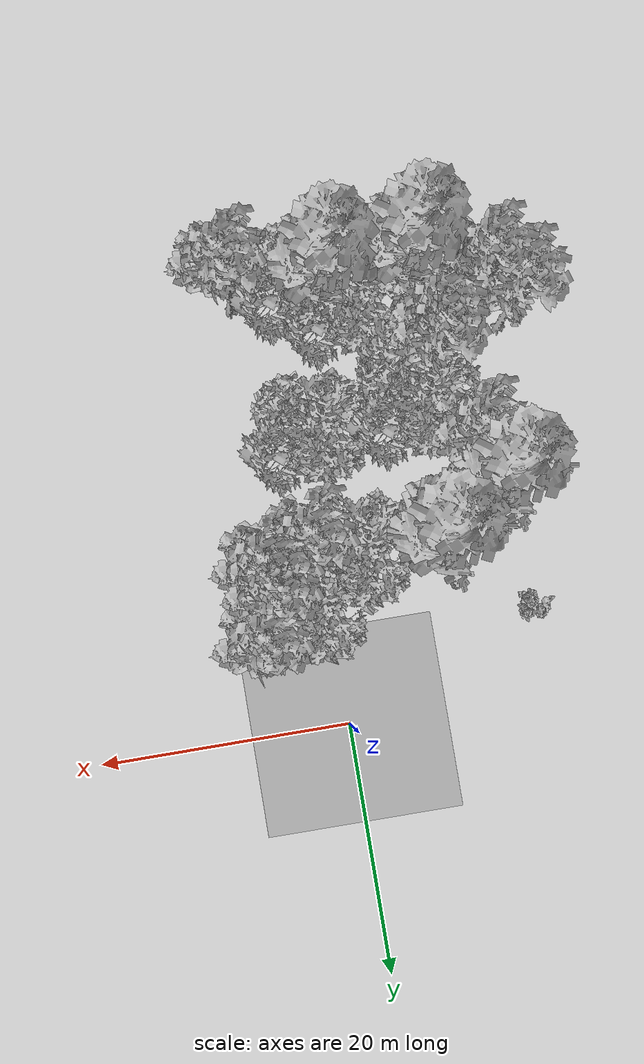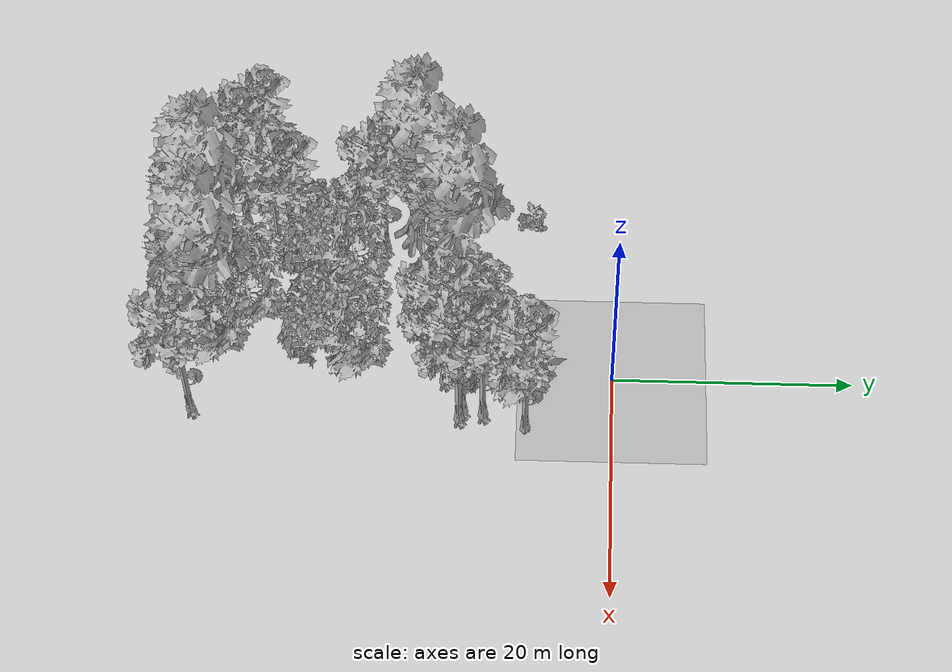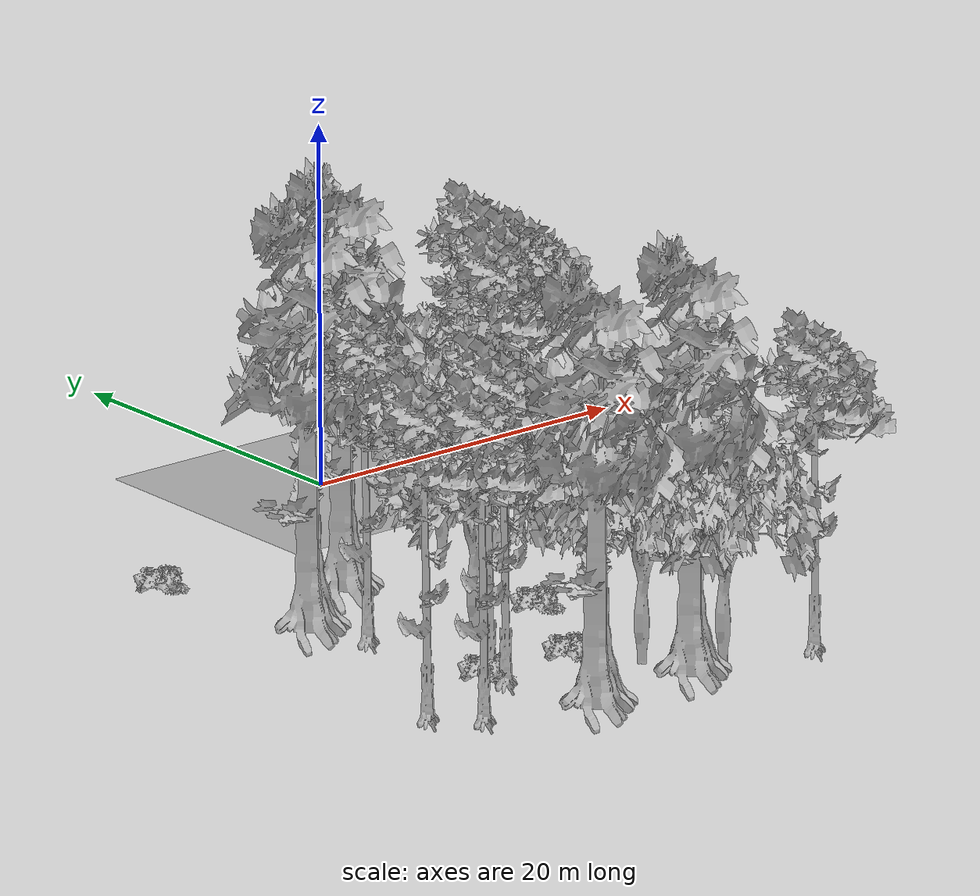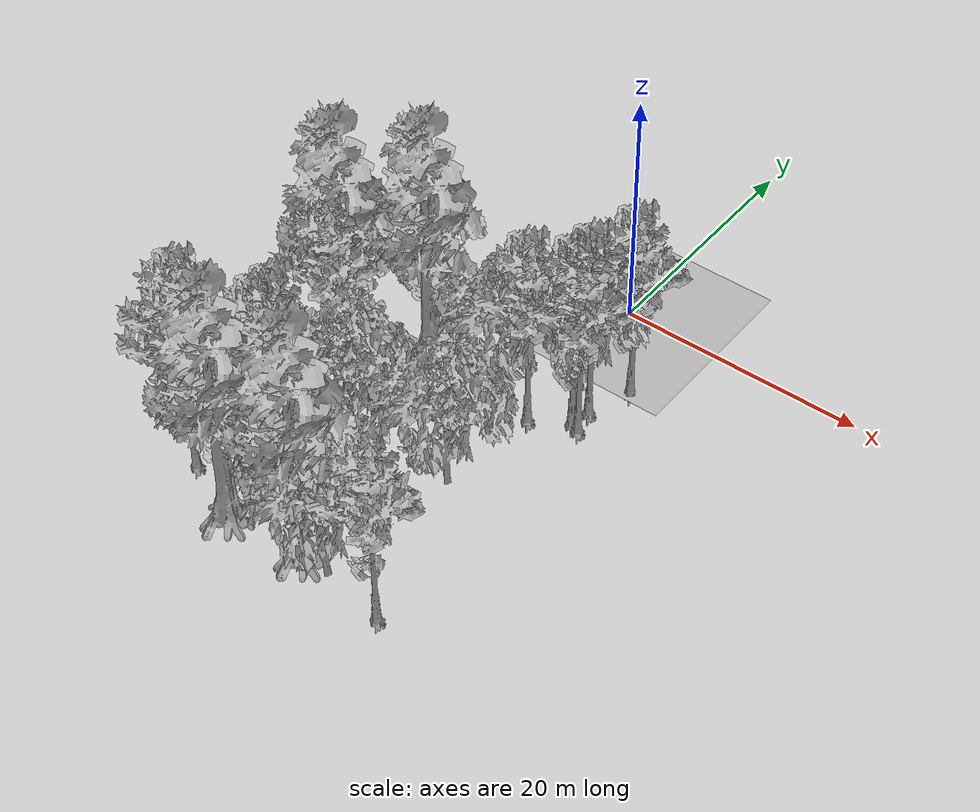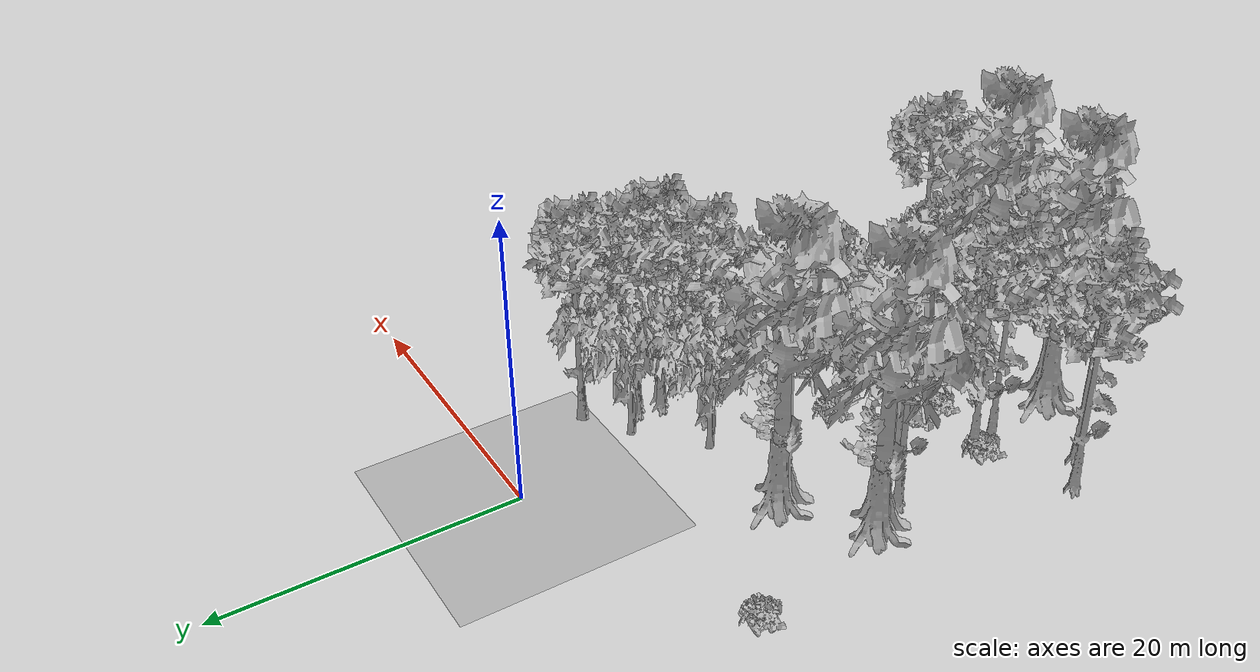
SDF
<sdf version="1.7">
 <world name="default">
  <model name="ground_plane">
   <static>1</static>
   <link name="link">
    <collision name="collision">
     <geometry><plane><normal>0 0 1</normal><size>70 70</size></plane></geometry>
     <surface><contact><ode><min_depth>0.01</min_depth><max_vel>0</max_vel></ode></contact></surface>
    </collision>
    <visual name="grass">
     <cast_shadows>0</cast_shadows>
     <geometry>
      <mesh>
       <scale>0.29000000000000004 0.29000000000000004 0.1</scale>
       <uri>file://grass_plane/meshes/grass_plane.dae</uri>
      </mesh>
     </geometry>
    </visual>
   </link>
  </model>
  <model name="Tree 4">
   <static>1</static>
   <pose>-0.35684061162447733 -22.16048140596576 0 1.57079 -0 0</pose>
   <link name="link">
    <collision name="collision">
     <geometry><mesh><scale>5 5 5</scale><uri>model://tree_2/meshes/tree_2.obj</uri></mesh></geometry>
    </collision>
    <visual name="visual">
     <geometry><mesh><scale>5 5 5</scale><uri>model://tree_2/meshes/tree_2.obj</uri></mesh></geometry>
    </visual>
   </link>
  </model>
  <model name="Tree 8">
   <static>1</static>
   <pose>-1.5016746747762966 -33.702371741759194 0 1.57079 -0 0</pose>
   <link name="link">
    <collision name="collision">
     <geometry><mesh><scale>5 5 5</scale><uri>model://tree_2/meshes/tree_2.obj</uri></mesh></geometry>
    </collision>
    <visual name="visual">
     <geometry><mesh><scale>5 5 5</scale><uri>model://tree_2/meshes/tree_2.obj</uri></mesh></geometry>
    </visual>
   </link>
  </model>
  <model name="Tree 15">
   <static>1</static>
   <pose>0.6577428110080774 -13.890793284871908 0 1.57079 -0 0</pose>
   <link name="link">
    <collision name="collision">
     <geometry><mesh><scale>5 5 5</scale><uri>model://tree_9/meshes/tree_9.obj</uri></mesh></geometry>
    </collision>
    <visual name="visual">
     <geometry><mesh><scale>5 5 5</scale><uri>model://tree_9/meshes/tree_9.obj</uri></mesh></geometry>
    </visual>
   </link>
  </model>
  <model name="Tree 30">
   <static>1</static>
   <pose>-8.545860499565524 -22.826163726782575 0 1.57079 -0 0</pose>
   <link name="link">
    <collision name="collision">
     <geometry><mesh><scale>5 5 5</scale><uri>model://tree_2/meshes/tree_2.obj</uri></mesh></geometry>
    </collision>
    <visual name="visual">
     <geometry><mesh><scale>5 5 5</scale><uri>model://tree_2/meshes/tree_2.obj</uri></mesh></geometry>
    </visual>
   </link>
  </model>
  <model name="Tree 31">
   <static>1</static>
   <pose>-14.174709668413985 -16.681003873834264 0 1.57079 -0 0</pose>
   <link name="link">
    <collision name="collision">
     <geometry><mesh><scale>5 5 5</scale><uri>model://tree_4/meshes/tree_4.obj</uri></mesh></geometry>
    </collision>
    <visual name="visual">
     <geometry><mesh><scale>5 5 5</scale><uri>model://tree_4/meshes/tree_4.obj</uri></mesh></geometry>
    </visual>
   </link>
  </model>
  <model name="Tree 54">
   <static>1</static>
   <pose>-10.092448693488798 -34.098062078575275 0 1.57079 -0 0</pose>
   <link name="link">
    <collision name="collision">
     <geometry><mesh><scale>5 5 5</scale><uri>model://tree_4/meshes/tree_4.obj</uri></mesh></geometry>
    </collision>
    <visual name="visual">
     <geometry><mesh><scale>5 5 5</scale><uri>model://tree_4/meshes/tree_4.obj</uri></mesh></geometry>
    </visual>
   </link>
  </model>
  <model name="Tree 65">
   <static>1</static>
   <pose>1.7243987079853653 -9.02996922799733 0 1.57079 -0 0</pose>
   <link name="link">
    <collision name="collision">
     <geometry><mesh><scale>5 5 5</scale><uri>model://tree_2/meshes/tree_2.obj</uri></mesh></geometry>
    </collision>
    <visual name="visual">
     <geometry><mesh><scale>5 5 5</scale><uri>model://tree_2/meshes/tree_2.obj</uri></mesh></geometry>
    </visual>
   </link>
  </model>
  <model name="Tree 71">
   <static>1</static>
   <pose>3.866322315430331 -34.68275864928653 0 1.57079 -0 0</pose>
   <link name="link">
    <collision name="collision">
     <geometry><mesh><scale>5 5 5</scale><uri>model://tree_9/meshes/tree_9.obj</uri></mesh></geometry>
    </collision>
    <visual name="visual">
     <geometry><mesh><scale>5 5 5</scale><uri>model://tree_9/meshes/tree_9.obj</uri></mesh></geometry>
    </visual>
   </link>
  </model>
  <model name="Tree 82">
   <static>1</static>
   <pose>4.197756827306748 -12.54007677003478 0 1.57079 -0 0</pose>
   <link name="link">
    <collision name="collision">
     <geometry><mesh><scale>5 5 5</scale><uri>model://tree_9/meshes/tree_9.obj</uri></mesh></geometry>
    </collision>
    <visual name="visual">
     <geometry><mesh><scale>5 5 5</scale><uri>model://tree_9/meshes/tree_9.obj</uri></mesh></geometry>
    </visual>
   </link>
  </model>
  <model name="Tree 98">
   <static>1</static>
   <pose>-12.644980128853685 -19.500797792096602 0 1.57079 -0 0</pose>
   <link name="link">
    <collision name="collision">
     <geometry><mesh><scale>5 5 5</scale><uri>model://tree_9/meshes/tree_9.obj</uri></mesh></geometry>
    </collision>
    <visual name="visual">
     <geometry><mesh><scale>5 5 5</scale><uri>model://tree_9/meshes/tree_9.obj</uri></mesh></geometry>
    </visual>
   </link>
  </model>
  <model name="Tree 99">
   <static>1</static>
   <pose>-10.96344793002184 -27.04201201688182 0 1.57079 -0 0</pose>
   <link name="link">
    <collision name="collision">
     <geometry><mesh><scale>5 5 5</scale><uri>model://tree_9/meshes/tree_9.obj</uri></mesh></geometry>
    </collision>
    <visual name="visual">
     <geometry><mesh><scale>5 5 5</scale><uri>model://tree_9/meshes/tree_9.obj</uri></mesh></geometry>
    </visual>
   </link>
  </model>
  <model name="Tree 132">
   <static>1</static>
   <pose>3.7530776806332398 -10.573624312487144 0 1.57079 -0 0</pose>
   <link name="link">
    <collision name="collision">
     <geometry><mesh><scale>5 5 5</scale><uri>model://tree_9/meshes/tree_9.obj</uri></mesh></geometry>
    </collision>
    <visual name="visual">
     <geometry><mesh><scale>5 5 5</scale><uri>model://tree_9/meshes/tree_9.obj</uri></mesh></geometry>
    </visual>
   </link>
  </model>
  <model name="Tree 159">
   <static>1</static>
   <pose>3.4425090654101282 -12.247262166019755 0 1.57079 -0 0</pose>
   <link name="link">
    <collision name="collision">
     <geometry><mesh><scale>5 5 5</scale><uri>model://tree_9/meshes/tree_9.obj</uri></mesh></geometry>
    </collision>
    <visual name="visual">
     <geometry><mesh><scale>5 5 5</scale><uri>model://tree_9/meshes/tree_9.obj</uri></mesh></geometry>
    </visual>
   </link>
  </model>
  <model name="Tree 177">
   <static>1</static>
   <pose>-9.093886908762698 -13.090200899521825 0 1.57079 -0 0</pose>
   <link name="link">
    <collision name="collision">
     <geometry><mesh><scale>5 5 5</scale><uri>model://tree_4/meshes/tree_4.obj</uri></mesh></geometry>
    </collision>
    <visual name="visual">
     <geometry><mesh><scale>5 5 5</scale><uri>model://tree_4/meshes/tree_4.obj</uri></mesh></geometry>
    </visual>
   </link>
  </model>
  <model name="Tree 180">
   <static>1</static>
   <pose>5.011517522125189 -7.086129346748351 0 1.57079 -0 0</pose>
   <link name="link">
    <collision name="collision">
     <geometry><mesh><scale>5 5 5</scale><uri>model://tree_9/meshes/tree_9.obj</uri></mesh></geometry>
    </collision>
    <visual name="visual">
     <geometry><mesh><scale>5 5 5</scale><uri>model://tree_9/meshes/tree_9.obj</uri></mesh></geometry>
    </visual>
   </link>
  </model>
  <model name="Tree 181">
   <static>1</static>
   <pose>-3.555938945683309 -33.6874107955427 0 1.57079 -0 0</pose>
   <link name="link">
    <collision name="collision">
     <geometry><mesh><scale>5 5 5</scale><uri>model://tree_4/meshes/tree_4.obj</uri></mesh></geometry>
    </collision>
    <visual name="visual">
     <geometry><mesh><scale>5 5 5</scale><uri>model://tree_4/meshes/tree_4.obj</uri></mesh></geometry>
    </visual>
   </link>
  </model>
  <model name="Tree 192">
   <static>1</static>
   <pose>-4.663655714416517 -31.186079177934076 0 1.57079 -0 0</pose>
   <link name="link">
    <collision name="collision">
     <geometry><mesh><scale>5 5 5</scale><uri>model://tree_2/meshes/tree_2.obj</uri></mesh></geometry>
    </collision>
    <visual name="visual">
     <geometry><mesh><scale>5 5 5</scale><uri>model://tree_2/meshes/tree_2.obj</uri></mesh></geometry>
    </visual>
   </link>
  </model>
  <model name="Tree 210">
   <static>1</static>
   <pose>-17.26787390029783 -29.80468567260963 0 1.57079 -0 0</pose>
   <link name="link">
    <collision name="collision">
     <geometry><mesh><scale>5 5 5</scale><uri>model://tree_9/meshes/tree_9.obj</uri></mesh></geometry>
    </collision>
    <visual name="visual">
     <geometry><mesh><scale>5 5 5</scale><uri>model://tree_9/meshes/tree_9.obj</uri></mesh></geometry>
    </visual>
   </link>
  </model>
  <model name="Tree 218">
   <static>1</static>
   <pose>-11.093910422548646 -28.405839179847614 0 1.57079 -0 0</pose>
   <link name="link">
    <collision name="collision">
     <geometry><mesh><scale>5 5 5</scale><uri>model://tree_9/meshes/tree_9.obj</uri></mesh></geometry>
    </collision>
    <visual name="visual">
     <geometry><mesh><scale>5 5 5</scale><uri>model://tree_9/meshes/tree_9.obj</uri></mesh></geometry>
    </visual>
   </link>
  </model>
  <model name="Tree 224">
   <static>1</static>
   <pose>-2.1849905224289365 -12.591842902561105 0 1.57079 -0 0</pose>
   <link name="link">
    <collision name="collision">
     <geometry><mesh><scale>5 5 5</scale><uri>model://tree_2/meshes/tree_2.obj</uri></mesh></geometry>
    </collision>
    <visual name="visual">
     <geometry><mesh><scale>5 5 5</scale><uri>model://tree_2/meshes/tree_2.obj</uri></mesh></geometry>
    </visual>
   </link>
  </model>
  <model name="Tree 239">
   <static>1</static>
   <pose>-15.327872510899056 -31.81172865562676 0 1.57079 -0 0</pose>
   <link name="link">
    <collision name="collision">
     <geometry><mesh><scale>5 5 5</scale><uri>model://tree_9/meshes/tree_9.obj</uri></mesh></geometry>
    </collision>
    <visual name="visual">
     <geometry><mesh><scale>5 5 5</scale><uri>model://tree_9/meshes/tree_9.obj</uri></mesh></geometry>
    </visual>
   </link>
  </model>
  <model name="Bush 5">
   <static>1</static>
   <pose>-3.335198597379634 -21.599186582880357 0 1.57079 -0 0</pose>
   <link name="link">
    <collision name="collision">
     <geometry><mesh><scale>2 2 2</scale><uri>model://bush_2/meshes/bush_2.obj</uri></mesh></geometry>
    </collision>
    <visual name="visual">
     <geometry><mesh><scale>5 5 5</scale><uri>model://bush_2/meshes/bush_2.obj</uri></mesh></geometry>
    </visual>
   </link>
  </model>
  <model name="Bush 20">
   <static>1</static>
   <pose>-16.23130949494958 -7.025106016199924 0 1.57079 -0 0</pose>
   <link name="link">
    <collision name="collision">
     <geometry><mesh><scale>2 2 2</scale><uri>model://bush_2/meshes/bush_2.obj</uri></mesh></geometry>
    </collision>
    <visual name="visual">
     <geometry><mesh><scale>5 5 5</scale><uri>model://bush_2/meshes/bush_2.obj</uri></mesh></geometry>
    </visual>
   </link>
  </model>
  <model name="Bush 32">
   <static>1</static>
   <pose>-6.571695913096814 -27.94744107516423 0 1.57079 -0 0</pose>
   <link name="link">
    <collision name="collision">
     <geometry><mesh><scale>2 2 2</scale><uri>model://bush_2/meshes/bush_2.obj</uri></mesh></geometry>
    </collision>
    <visual name="visual">
     <geometry><mesh><scale>5 5 5</scale><uri>model://bush_2/meshes/bush_2.obj</uri></mesh></geometry>
    </visual>
   </link>
  </model>
  <model name="Bush 45">
   <static>1</static>
   <pose>-11.656578129427704 -27.451807471539144 0 1.57079 -0 0</pose>
   <link name="link">
    <collision name="collision">
     <geometry><mesh><scale>2 2 2</scale><uri>model://bush_2/meshes/bush_2.obj</uri></mesh></geometry>
    </collision>
    <visual name="visual">
     <geometry><mesh><scale>5 5 5</scale><uri>model://bush_2/meshes/bush_2.obj</uri></mesh></geometry>
    </visual>
   </link>
  </model>
 </world>
</sdf>
